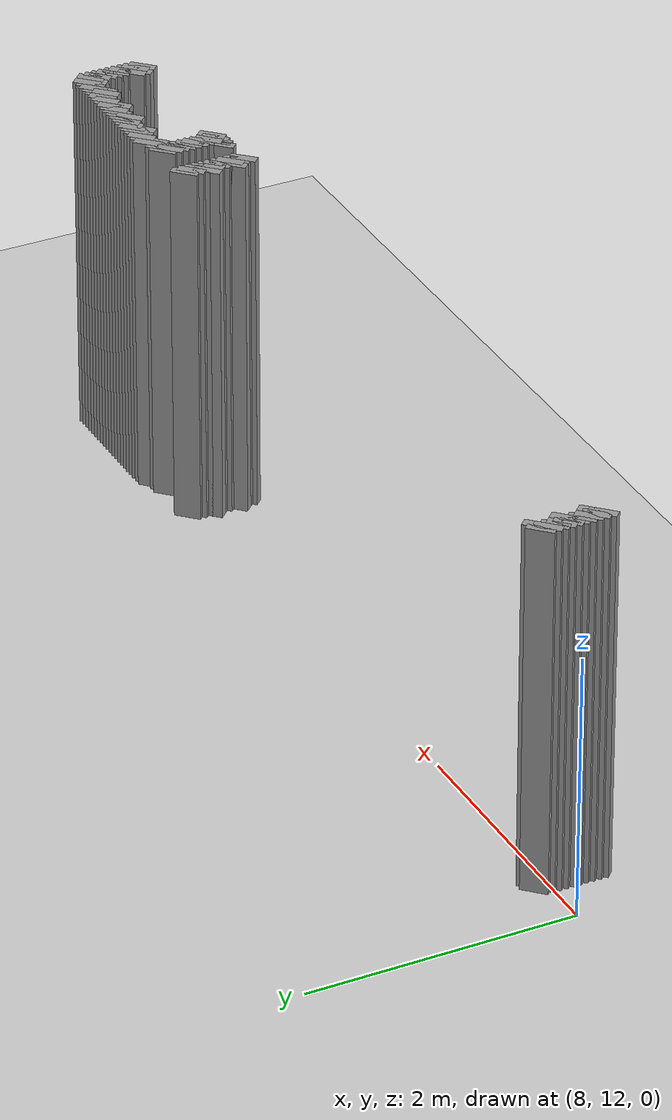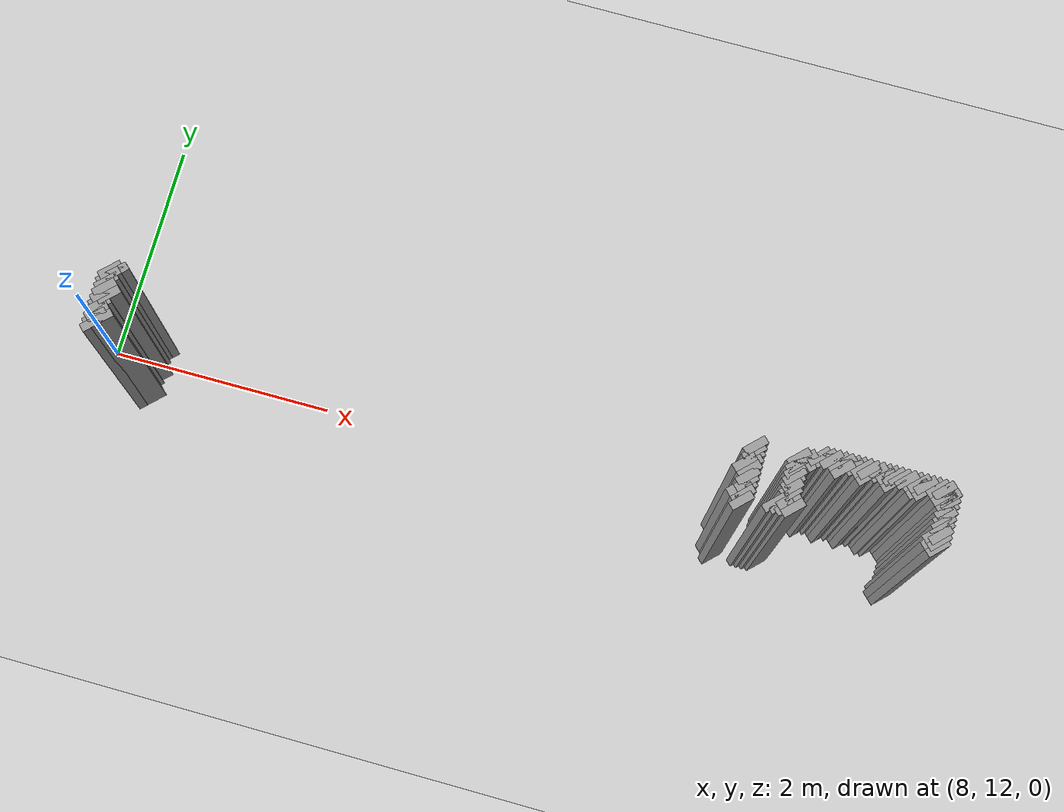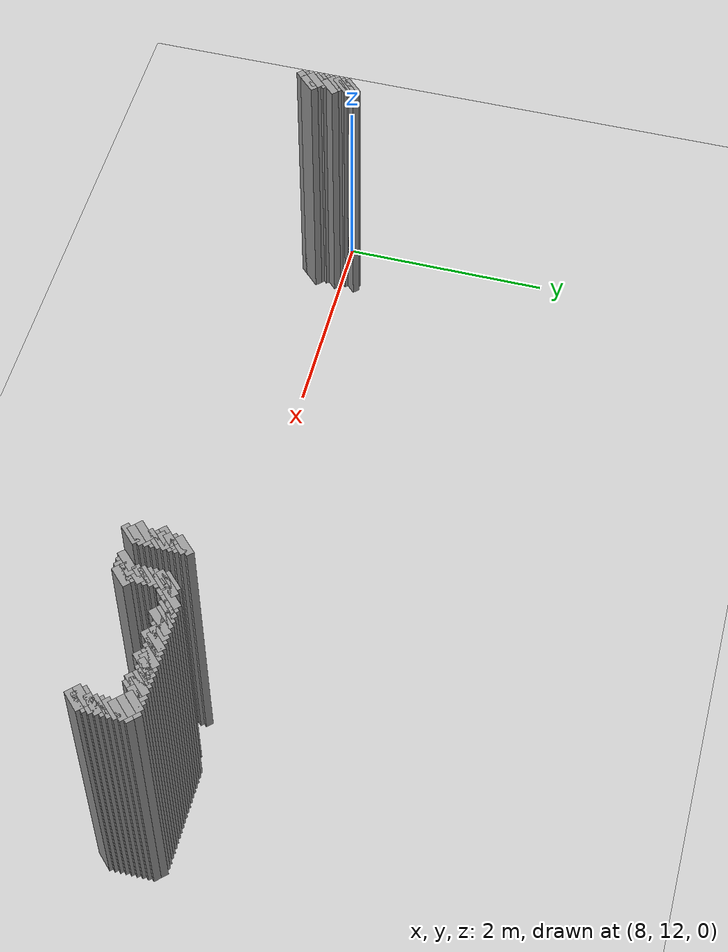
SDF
<sdf version="1.5">
 <world name="default">
  <include><uri>model://ground_plane</uri></include>
  <include><uri>model://sun</uri></include>
  <model name="grey_wall_857">
   <static>1</static>
   <link name="link">
    <pose>14.2 12.15  1.4 0 0 -0.785398163397</pose>
    <collision name="collision"><geometry><box><size>0.0707106781187 .2  2.8</size></box></geometry></collision>
    <visual name="visual">
     <cast_shadows>0</cast_shadows>
     <geometry><box><size>0.0707106781187 .2  2.8</size></box></geometry>
     <material>
      <script>
       <uri>model://grey_wall/materials/scripts</uri>
       <uri>model://grey_wall/materials/textures</uri>
       <name>vrc/grey_wall</name>
      </script>
     </material>
    </visual>
   </link>
  </model>
  <model name="grey_wall_858">
   <static>1</static>
   <link name="link">
    <pose>14.25 12.15  1.4 0 0 -0.785398163397</pose>
    <collision name="collision"><geometry><box><size>0.0707106781187 .2  2.8</size></box></geometry></collision>
    <visual name="visual">
     <cast_shadows>0</cast_shadows>
     <geometry><box><size>0.0707106781187 .2  2.8</size></box></geometry>
     <material>
      <script>
       <uri>model://grey_wall/materials/scripts</uri>
       <uri>model://grey_wall/materials/textures</uri>
       <name>vrc/grey_wall</name>
      </script>
     </material>
    </visual>
   </link>
  </model>
  <model name="grey_wall_859">
   <static>1</static>
   <link name="link">
    <pose>14.3 12.15  1.4 0 0 -0.785398163397</pose>
    <collision name="collision"><geometry><box><size>0.0707106781187 .2  2.8</size></box></geometry></collision>
    <visual name="visual">
     <cast_shadows>0</cast_shadows>
     <geometry><box><size>0.0707106781187 .2  2.8</size></box></geometry>
     <material>
      <script>
       <uri>model://grey_wall/materials/scripts</uri>
       <uri>model://grey_wall/materials/textures</uri>
       <name>vrc/grey_wall</name>
      </script>
     </material>
    </visual>
   </link>
  </model>
  <model name="grey_wall_860">
   <static>1</static>
   <link name="link">
    <pose>14.35 12.15  1.4 0 0 -0.785398163397</pose>
    <collision name="collision"><geometry><box><size>0.0707106781187 .2  2.8</size></box></geometry></collision>
    <visual name="visual">
     <cast_shadows>0</cast_shadows>
     <geometry><box><size>0.0707106781187 .2  2.8</size></box></geometry>
     <material>
      <script>
       <uri>model://grey_wall/materials/scripts</uri>
       <uri>model://grey_wall/materials/textures</uri>
       <name>vrc/grey_wall</name>
      </script>
     </material>
    </visual>
   </link>
  </model>
  <model name="grey_wall_861">
   <static>1</static>
   <link name="link">
    <pose>14.4 12.15  1.4 0 0 -0.785398163397</pose>
    <collision name="collision"><geometry><box><size>0.0707106781187 .2  2.8</size></box></geometry></collision>
    <visual name="visual">
     <cast_shadows>0</cast_shadows>
     <geometry><box><size>0.0707106781187 .2  2.8</size></box></geometry>
     <material>
      <script>
       <uri>model://grey_wall/materials/scripts</uri>
       <uri>model://grey_wall/materials/textures</uri>
       <name>vrc/grey_wall</name>
      </script>
     </material>
    </visual>
   </link>
  </model>
  <model name="grey_wall_862">
   <static>1</static>
   <link name="link">
    <pose>14.45 12.15  1.4 0 0 -0.785398163397</pose>
    <collision name="collision"><geometry><box><size>0.0707106781187 .2  2.8</size></box></geometry></collision>
    <visual name="visual">
     <cast_shadows>0</cast_shadows>
     <geometry><box><size>0.0707106781187 .2  2.8</size></box></geometry>
     <material>
      <script>
       <uri>model://grey_wall/materials/scripts</uri>
       <uri>model://grey_wall/materials/textures</uri>
       <name>vrc/grey_wall</name>
      </script>
     </material>
    </visual>
   </link>
  </model>
  <model name="grey_wall_863">
   <static>1</static>
   <link name="link">
    <pose>14.5 12.15  1.4 0 0 -0.785398163397</pose>
    <collision name="collision"><geometry><box><size>0.0707106781187 .2  2.8</size></box></geometry></collision>
    <visual name="visual">
     <cast_shadows>0</cast_shadows>
     <geometry><box><size>0.0707106781187 .2  2.8</size></box></geometry>
     <material>
      <script>
       <uri>model://grey_wall/materials/scripts</uri>
       <uri>model://grey_wall/materials/textures</uri>
       <name>vrc/grey_wall</name>
      </script>
     </material>
    </visual>
   </link>
  </model>
  <model name="grey_wall_864">
   <static>1</static>
   <link name="link">
    <pose>14.55 12.15  1.4 0 0 -0.785398163397</pose>
    <collision name="collision"><geometry><box><size>0.0707106781187 .2  2.8</size></box></geometry></collision>
    <visual name="visual">
     <cast_shadows>0</cast_shadows>
     <geometry><box><size>0.0707106781187 .2  2.8</size></box></geometry>
     <material>
      <script>
       <uri>model://grey_wall/materials/scripts</uri>
       <uri>model://grey_wall/materials/textures</uri>
       <name>vrc/grey_wall</name>
      </script>
     </material>
    </visual>
   </link>
  </model>
  <model name="grey_wall_865">
   <static>1</static>
   <link name="link">
    <pose>14.6 12.15  1.4 0 0 -0.785398163397</pose>
    <collision name="collision"><geometry><box><size>0.0707106781187 .2  2.8</size></box></geometry></collision>
    <visual name="visual">
     <cast_shadows>0</cast_shadows>
     <geometry><box><size>0.0707106781187 .2  2.8</size></box></geometry>
     <material>
      <script>
       <uri>model://grey_wall/materials/scripts</uri>
       <uri>model://grey_wall/materials/textures</uri>
       <name>vrc/grey_wall</name>
      </script>
     </material>
    </visual>
   </link>
  </model>
  <model name="grey_wall_866">
   <static>1</static>
   <link name="link">
    <pose>14.65 12.15  1.4 0 0 -0.785398163397</pose>
    <collision name="collision"><geometry><box><size>0.0707106781187 .2  2.8</size></box></geometry></collision>
    <visual name="visual">
     <cast_shadows>0</cast_shadows>
     <geometry><box><size>0.0707106781187 .2  2.8</size></box></geometry>
     <material>
      <script>
       <uri>model://grey_wall/materials/scripts</uri>
       <uri>model://grey_wall/materials/textures</uri>
       <name>vrc/grey_wall</name>
      </script>
     </material>
    </visual>
   </link>
  </model>
  <model name="grey_wall_867">
   <static>1</static>
   <link name="link">
    <pose>14.7 12.15  1.4 0 0 -0.785398163397</pose>
    <collision name="collision"><geometry><box><size>0.0707106781187 .2  2.8</size></box></geometry></collision>
    <visual name="visual">
     <cast_shadows>0</cast_shadows>
     <geometry><box><size>0.0707106781187 .2  2.8</size></box></geometry>
     <material>
      <script>
       <uri>model://grey_wall/materials/scripts</uri>
       <uri>model://grey_wall/materials/textures</uri>
       <name>vrc/grey_wall</name>
      </script>
     </material>
    </visual>
   </link>
  </model>
  <model name="grey_wall_868">
   <static>1</static>
   <link name="link">
    <pose>14.75 12.15  1.4 0 0 -0.785398163397</pose>
    <collision name="collision"><geometry><box><size>0.0707106781187 .2  2.8</size></box></geometry></collision>
    <visual name="visual">
     <cast_shadows>0</cast_shadows>
     <geometry><box><size>0.0707106781187 .2  2.8</size></box></geometry>
     <material>
      <script>
       <uri>model://grey_wall/materials/scripts</uri>
       <uri>model://grey_wall/materials/textures</uri>
       <name>vrc/grey_wall</name>
      </script>
     </material>
    </visual>
   </link>
  </model>
  <model name="grey_wall_869">
   <static>1</static>
   <link name="link">
    <pose>14.8 12.15  1.4 0 0 -0.785398163397</pose>
    <collision name="collision"><geometry><box><size>0.0707106781187 .2  2.8</size></box></geometry></collision>
    <visual name="visual">
     <cast_shadows>0</cast_shadows>
     <geometry><box><size>0.0707106781187 .2  2.8</size></box></geometry>
     <material>
      <script>
       <uri>model://grey_wall/materials/scripts</uri>
       <uri>model://grey_wall/materials/textures</uri>
       <name>vrc/grey_wall</name>
      </script>
     </material>
    </visual>
   </link>
  </model>
  <model name="grey_wall_870">
   <static>1</static>
   <link name="link">
    <pose>14.85 12.15  1.4 0 0 -0.785398163397</pose>
    <collision name="collision"><geometry><box><size>0.0707106781187 .2  2.8</size></box></geometry></collision>
    <visual name="visual">
     <cast_shadows>0</cast_shadows>
     <geometry><box><size>0.0707106781187 .2  2.8</size></box></geometry>
     <material>
      <script>
       <uri>model://grey_wall/materials/scripts</uri>
       <uri>model://grey_wall/materials/textures</uri>
       <name>vrc/grey_wall</name>
      </script>
     </material>
    </visual>
   </link>
  </model>
  <model name="grey_wall_871">
   <static>1</static>
   <link name="link">
    <pose>14.9 12.15  1.4 0 0 -0.785398163397</pose>
    <collision name="collision"><geometry><box><size>0.0707106781187 .2  2.8</size></box></geometry></collision>
    <visual name="visual">
     <cast_shadows>0</cast_shadows>
     <geometry><box><size>0.0707106781187 .2  2.8</size></box></geometry>
     <material>
      <script>
       <uri>model://grey_wall/materials/scripts</uri>
       <uri>model://grey_wall/materials/textures</uri>
       <name>vrc/grey_wall</name>
      </script>
     </material>
    </visual>
   </link>
  </model>
  <model name="grey_wall_872">
   <static>1</static>
   <link name="link">
    <pose>14.95 12.15  1.4 0 0 -0.785398163397</pose>
    <collision name="collision"><geometry><box><size>0.0707106781187 .2  2.8</size></box></geometry></collision>
    <visual name="visual">
     <cast_shadows>0</cast_shadows>
     <geometry><box><size>0.0707106781187 .2  2.8</size></box></geometry>
     <material>
      <script>
       <uri>model://grey_wall/materials/scripts</uri>
       <uri>model://grey_wall/materials/textures</uri>
       <name>vrc/grey_wall</name>
      </script>
     </material>
    </visual>
   </link>
  </model>
  <model name="grey_wall_873">
   <static>1</static>
   <link name="link">
    <pose>15.0 12.15  1.4 0 0 -0.785398163397</pose>
    <collision name="collision"><geometry><box><size>0.0707106781187 .2  2.8</size></box></geometry></collision>
    <visual name="visual">
     <cast_shadows>0</cast_shadows>
     <geometry><box><size>0.0707106781187 .2  2.8</size></box></geometry>
     <material>
      <script>
       <uri>model://grey_wall/materials/scripts</uri>
       <uri>model://grey_wall/materials/textures</uri>
       <name>vrc/grey_wall</name>
      </script>
     </material>
    </visual>
   </link>
  </model>
  <model name="grey_wall_874">
   <static>1</static>
   <link name="link">
    <pose>15.05 12.15  1.4 0 0 -0.785398163397</pose>
    <collision name="collision"><geometry><box><size>0.0707106781187 .2  2.8</size></box></geometry></collision>
    <visual name="visual">
     <cast_shadows>0</cast_shadows>
     <geometry><box><size>0.0707106781187 .2  2.8</size></box></geometry>
     <material>
      <script>
       <uri>model://grey_wall/materials/scripts</uri>
       <uri>model://grey_wall/materials/textures</uri>
       <name>vrc/grey_wall</name>
      </script>
     </material>
    </visual>
   </link>
  </model>
  <model name="grey_wall_875">
   <static>1</static>
   <link name="link">
    <pose>15.1 12.15  1.4 0 0 -0.785398163397</pose>
    <collision name="collision"><geometry><box><size>0.0707106781187 .2  2.8</size></box></geometry></collision>
    <visual name="visual">
     <cast_shadows>0</cast_shadows>
     <geometry><box><size>0.0707106781187 .2  2.8</size></box></geometry>
     <material>
      <script>
       <uri>model://grey_wall/materials/scripts</uri>
       <uri>model://grey_wall/materials/textures</uri>
       <name>vrc/grey_wall</name>
      </script>
     </material>
    </visual>
   </link>
  </model>
  <model name="grey_wall_876">
   <static>1</static>
   <link name="link">
    <pose>15.15 12.15  1.4 0 0 -0.785398163397</pose>
    <collision name="collision"><geometry><box><size>0.0707106781187 .2  2.8</size></box></geometry></collision>
    <visual name="visual">
     <cast_shadows>0</cast_shadows>
     <geometry><box><size>0.0707106781187 .2  2.8</size></box></geometry>
     <material>
      <script>
       <uri>model://grey_wall/materials/scripts</uri>
       <uri>model://grey_wall/materials/textures</uri>
       <name>vrc/grey_wall</name>
      </script>
     </material>
    </visual>
   </link>
  </model>
  <model name="grey_wall_877">
   <static>1</static>
   <link name="link">
    <pose>15.2 12.15  1.4 0 0 -0.785398163397</pose>
    <collision name="collision"><geometry><box><size>0.0707106781187 .2  2.8</size></box></geometry></collision>
    <visual name="visual">
     <cast_shadows>0</cast_shadows>
     <geometry><box><size>0.0707106781187 .2  2.8</size></box></geometry>
     <material>
      <script>
       <uri>model://grey_wall/materials/scripts</uri>
       <uri>model://grey_wall/materials/textures</uri>
       <name>vrc/grey_wall</name>
      </script>
     </material>
    </visual>
   </link>
  </model>
  <model name="grey_wall_878">
   <static>1</static>
   <link name="link">
    <pose>8.4 12.1  1.4 0 0 -0.785398163397</pose>
    <collision name="collision"><geometry><box><size>0.0707106781187 .2  2.8</size></box></geometry></collision>
    <visual name="visual">
     <cast_shadows>0</cast_shadows>
     <geometry><box><size>0.0707106781187 .2  2.8</size></box></geometry>
     <material>
      <script>
       <uri>model://grey_wall/materials/scripts</uri>
       <uri>model://grey_wall/materials/textures</uri>
       <name>vrc/grey_wall</name>
      </script>
     </material>
    </visual>
   </link>
  </model>
  <model name="grey_wall_879">
   <static>1</static>
   <link name="link">
    <pose>8.45 12.1  1.4 0 0 -0.785398163397</pose>
    <collision name="collision"><geometry><box><size>0.0707106781187 .2  2.8</size></box></geometry></collision>
    <visual name="visual">
     <cast_shadows>0</cast_shadows>
     <geometry><box><size>0.0707106781187 .2  2.8</size></box></geometry>
     <material>
      <script>
       <uri>model://grey_wall/materials/scripts</uri>
       <uri>model://grey_wall/materials/textures</uri>
       <name>vrc/grey_wall</name>
      </script>
     </material>
    </visual>
   </link>
  </model>
  <model name="grey_wall_880">
   <static>1</static>
   <link name="link">
    <pose>13.7 12.1  1.4 0 0 -0.785398163397</pose>
    <collision name="collision"><geometry><box><size>0.0707106781187 .2  2.8</size></box></geometry></collision>
    <visual name="visual">
     <cast_shadows>0</cast_shadows>
     <geometry><box><size>0.0707106781187 .2  2.8</size></box></geometry>
     <material>
      <script>
       <uri>model://grey_wall/materials/scripts</uri>
       <uri>model://grey_wall/materials/textures</uri>
       <name>vrc/grey_wall</name>
      </script>
     </material>
    </visual>
   </link>
  </model>
  <model name="grey_wall_881">
   <static>1</static>
   <link name="link">
    <pose>14.05 12.1  1.4 0 0 -0.785398163397</pose>
    <collision name="collision"><geometry><box><size>0.0707106781187 .2  2.8</size></box></geometry></collision>
    <visual name="visual">
     <cast_shadows>0</cast_shadows>
     <geometry><box><size>0.0707106781187 .2  2.8</size></box></geometry>
     <material>
      <script>
       <uri>model://grey_wall/materials/scripts</uri>
       <uri>model://grey_wall/materials/textures</uri>
       <name>vrc/grey_wall</name>
      </script>
     </material>
    </visual>
   </link>
  </model>
  <model name="grey_wall_882">
   <static>1</static>
   <link name="link">
    <pose>14.1 12.1  1.4 0 0 -0.785398163397</pose>
    <collision name="collision"><geometry><box><size>0.0707106781187 .2  2.8</size></box></geometry></collision>
    <visual name="visual">
     <cast_shadows>0</cast_shadows>
     <geometry><box><size>0.0707106781187 .2  2.8</size></box></geometry>
     <material>
      <script>
       <uri>model://grey_wall/materials/scripts</uri>
       <uri>model://grey_wall/materials/textures</uri>
       <name>vrc/grey_wall</name>
      </script>
     </material>
    </visual>
   </link>
  </model>
  <model name="grey_wall_883">
   <static>1</static>
   <link name="link">
    <pose>14.2 12.1  1.4 0 0 -0.785398163397</pose>
    <collision name="collision"><geometry><box><size>0.0707106781187 .2  2.8</size></box></geometry></collision>
    <visual name="visual">
     <cast_shadows>0</cast_shadows>
     <geometry><box><size>0.0707106781187 .2  2.8</size></box></geometry>
     <material>
      <script>
       <uri>model://grey_wall/materials/scripts</uri>
       <uri>model://grey_wall/materials/textures</uri>
       <name>vrc/grey_wall</name>
      </script>
     </material>
    </visual>
   </link>
  </model>
  <model name="grey_wall_884">
   <static>1</static>
   <link name="link">
    <pose>14.4 12.1  1.4 0 0 -0.785398163397</pose>
    <collision name="collision"><geometry><box><size>0.0707106781187 .2  2.8</size></box></geometry></collision>
    <visual name="visual">
     <cast_shadows>0</cast_shadows>
     <geometry><box><size>0.0707106781187 .2  2.8</size></box></geometry>
     <material>
      <script>
       <uri>model://grey_wall/materials/scripts</uri>
       <uri>model://grey_wall/materials/textures</uri>
       <name>vrc/grey_wall</name>
      </script>
     </material>
    </visual>
   </link>
  </model>
  <model name="grey_wall_885">
   <static>1</static>
   <link name="link">
    <pose>14.6 12.1  1.4 0 0 -0.785398163397</pose>
    <collision name="collision"><geometry><box><size>0.0707106781187 .2  2.8</size></box></geometry></collision>
    <visual name="visual">
     <cast_shadows>0</cast_shadows>
     <geometry><box><size>0.0707106781187 .2  2.8</size></box></geometry>
     <material>
      <script>
       <uri>model://grey_wall/materials/scripts</uri>
       <uri>model://grey_wall/materials/textures</uri>
       <name>vrc/grey_wall</name>
      </script>
     </material>
    </visual>
   </link>
  </model>
  <model name="grey_wall_886">
   <static>1</static>
   <link name="link">
    <pose>14.8 12.1  1.4 0 0 -0.785398163397</pose>
    <collision name="collision"><geometry><box><size>0.0707106781187 .2  2.8</size></box></geometry></collision>
    <visual name="visual">
     <cast_shadows>0</cast_shadows>
     <geometry><box><size>0.0707106781187 .2  2.8</size></box></geometry>
     <material>
      <script>
       <uri>model://grey_wall/materials/scripts</uri>
       <uri>model://grey_wall/materials/textures</uri>
       <name>vrc/grey_wall</name>
      </script>
     </material>
    </visual>
   </link>
  </model>
  <model name="grey_wall_887">
   <static>1</static>
   <link name="link">
    <pose>15.0 12.1  1.4 0 0 -0.785398163397</pose>
    <collision name="collision"><geometry><box><size>0.0707106781187 .2  2.8</size></box></geometry></collision>
    <visual name="visual">
     <cast_shadows>0</cast_shadows>
     <geometry><box><size>0.0707106781187 .2  2.8</size></box></geometry>
     <material>
      <script>
       <uri>model://grey_wall/materials/scripts</uri>
       <uri>model://grey_wall/materials/textures</uri>
       <name>vrc/grey_wall</name>
      </script>
     </material>
    </visual>
   </link>
  </model>
  <model name="grey_wall_888">
   <static>1</static>
   <link name="link">
    <pose>15.05 12.1  1.4 0 0 -0.785398163397</pose>
    <collision name="collision"><geometry><box><size>0.0707106781187 .2  2.8</size></box></geometry></collision>
    <visual name="visual">
     <cast_shadows>0</cast_shadows>
     <geometry><box><size>0.0707106781187 .2  2.8</size></box></geometry>
     <material>
      <script>
       <uri>model://grey_wall/materials/scripts</uri>
       <uri>model://grey_wall/materials/textures</uri>
       <name>vrc/grey_wall</name>
      </script>
     </material>
    </visual>
   </link>
  </model>
  <model name="grey_wall_889">
   <static>1</static>
   <link name="link">
    <pose>15.2 12.1  1.4 0 0 -0.785398163397</pose>
    <collision name="collision"><geometry><box><size>0.0707106781187 .2  2.8</size></box></geometry></collision>
    <visual name="visual">
     <cast_shadows>0</cast_shadows>
     <geometry><box><size>0.0707106781187 .2  2.8</size></box></geometry>
     <material>
      <script>
       <uri>model://grey_wall/materials/scripts</uri>
       <uri>model://grey_wall/materials/textures</uri>
       <name>vrc/grey_wall</name>
      </script>
     </material>
    </visual>
   </link>
  </model>
  <model name="grey_wall_890">
   <static>1</static>
   <link name="link">
    <pose>15.25 12.1  1.4 0 0 -0.785398163397</pose>
    <collision name="collision"><geometry><box><size>0.0707106781187 .2  2.8</size></box></geometry></collision>
    <visual name="visual">
     <cast_shadows>0</cast_shadows>
     <geometry><box><size>0.0707106781187 .2  2.8</size></box></geometry>
     <material>
      <script>
       <uri>model://grey_wall/materials/scripts</uri>
       <uri>model://grey_wall/materials/textures</uri>
       <name>vrc/grey_wall</name>
      </script>
     </material>
    </visual>
   </link>
  </model>
  <model name="grey_wall_891">
   <static>1</static>
   <link name="link">
    <pose>8.4 12.05  1.4 0 0 -0.785398163397</pose>
    <collision name="collision"><geometry><box><size>0.0707106781187 .2  2.8</size></box></geometry></collision>
    <visual name="visual">
     <cast_shadows>0</cast_shadows>
     <geometry><box><size>0.0707106781187 .2  2.8</size></box></geometry>
     <material>
      <script>
       <uri>model://grey_wall/materials/scripts</uri>
       <uri>model://grey_wall/materials/textures</uri>
       <name>vrc/grey_wall</name>
      </script>
     </material>
    </visual>
   </link>
  </model>
  <model name="grey_wall_892">
   <static>1</static>
   <link name="link">
    <pose>13.7 12.05  1.4 0 0 -0.785398163397</pose>
    <collision name="collision"><geometry><box><size>0.0707106781187 .2  2.8</size></box></geometry></collision>
    <visual name="visual">
     <cast_shadows>0</cast_shadows>
     <geometry><box><size>0.0707106781187 .2  2.8</size></box></geometry>
     <material>
      <script>
       <uri>model://grey_wall/materials/scripts</uri>
       <uri>model://grey_wall/materials/textures</uri>
       <name>vrc/grey_wall</name>
      </script>
     </material>
    </visual>
   </link>
  </model>
  <model name="grey_wall_893">
   <static>1</static>
   <link name="link">
    <pose>14.05 12.05  1.4 0 0 -0.785398163397</pose>
    <collision name="collision"><geometry><box><size>0.0707106781187 .2  2.8</size></box></geometry></collision>
    <visual name="visual">
     <cast_shadows>0</cast_shadows>
     <geometry><box><size>0.0707106781187 .2  2.8</size></box></geometry>
     <material>
      <script>
       <uri>model://grey_wall/materials/scripts</uri>
       <uri>model://grey_wall/materials/textures</uri>
       <name>vrc/grey_wall</name>
      </script>
     </material>
    </visual>
   </link>
  </model>
  <model name="grey_wall_894">
   <static>1</static>
   <link name="link">
    <pose>15.25 12.05  1.4 0 0 -0.785398163397</pose>
    <collision name="collision"><geometry><box><size>0.0707106781187 .2  2.8</size></box></geometry></collision>
    <visual name="visual">
     <cast_shadows>0</cast_shadows>
     <geometry><box><size>0.0707106781187 .2  2.8</size></box></geometry>
     <material>
      <script>
       <uri>model://grey_wall/materials/scripts</uri>
       <uri>model://grey_wall/materials/textures</uri>
       <name>vrc/grey_wall</name>
      </script>
     </material>
    </visual>
   </link>
  </model>
  <model name="grey_wall_895">
   <static>1</static>
   <link name="link">
    <pose>8.4 12.0  1.4 0 0 -0.785398163397</pose>
    <collision name="collision"><geometry><box><size>0.0707106781187 .2  2.8</size></box></geometry></collision>
    <visual name="visual">
     <cast_shadows>0</cast_shadows>
     <geometry><box><size>0.0707106781187 .2  2.8</size></box></geometry>
     <material>
      <script>
       <uri>model://grey_wall/materials/scripts</uri>
       <uri>model://grey_wall/materials/textures</uri>
       <name>vrc/grey_wall</name>
      </script>
     </material>
    </visual>
   </link>
  </model>
  <model name="grey_wall_896">
   <static>1</static>
   <link name="link">
    <pose>13.7 12.0  1.4 0 0 -0.785398163397</pose>
    <collision name="collision"><geometry><box><size>0.0707106781187 .2  2.8</size></box></geometry></collision>
    <visual name="visual">
     <cast_shadows>0</cast_shadows>
     <geometry><box><size>0.0707106781187 .2  2.8</size></box></geometry>
     <material>
      <script>
       <uri>model://grey_wall/materials/scripts</uri>
       <uri>model://grey_wall/materials/textures</uri>
       <name>vrc/grey_wall</name>
      </script>
     </material>
    </visual>
   </link>
  </model>
  <model name="grey_wall_897">
   <static>1</static>
   <link name="link">
    <pose>14.05 12.0  1.4 0 0 -0.785398163397</pose>
    <collision name="collision"><geometry><box><size>0.0707106781187 .2  2.8</size></box></geometry></collision>
    <visual name="visual">
     <cast_shadows>0</cast_shadows>
     <geometry><box><size>0.0707106781187 .2  2.8</size></box></geometry>
     <material>
      <script>
       <uri>model://grey_wall/materials/scripts</uri>
       <uri>model://grey_wall/materials/textures</uri>
       <name>vrc/grey_wall</name>
      </script>
     </material>
    </visual>
   </link>
  </model>
  <model name="grey_wall_898">
   <static>1</static>
   <link name="link">
    <pose>15.25 12.0  1.4 0 0 -0.785398163397</pose>
    <collision name="collision"><geometry><box><size>0.0707106781187 .2  2.8</size></box></geometry></collision>
    <visual name="visual">
     <cast_shadows>0</cast_shadows>
     <geometry><box><size>0.0707106781187 .2  2.8</size></box></geometry>
     <material>
      <script>
       <uri>model://grey_wall/materials/scripts</uri>
       <uri>model://grey_wall/materials/textures</uri>
       <name>vrc/grey_wall</name>
      </script>
     </material>
    </visual>
   </link>
  </model>
  <model name="grey_wall_899">
   <static>1</static>
   <link name="link">
    <pose>8.4 11.95  1.4 0 0 -0.785398163397</pose>
    <collision name="collision"><geometry><box><size>0.0707106781187 .2  2.8</size></box></geometry></collision>
    <visual name="visual">
     <cast_shadows>0</cast_shadows>
     <geometry><box><size>0.0707106781187 .2  2.8</size></box></geometry>
     <material>
      <script>
       <uri>model://grey_wall/materials/scripts</uri>
       <uri>model://grey_wall/materials/textures</uri>
       <name>vrc/grey_wall</name>
      </script>
     </material>
    </visual>
   </link>
  </model>
  <model name="grey_wall_900">
   <static>1</static>
   <link name="link">
    <pose>13.65 11.95  1.4 0 0 -0.785398163397</pose>
    <collision name="collision"><geometry><box><size>0.0707106781187 .2  2.8</size></box></geometry></collision>
    <visual name="visual">
     <cast_shadows>0</cast_shadows>
     <geometry><box><size>0.0707106781187 .2  2.8</size></box></geometry>
     <material>
      <script>
       <uri>model://grey_wall/materials/scripts</uri>
       <uri>model://grey_wall/materials/textures</uri>
       <name>vrc/grey_wall</name>
      </script>
     </material>
    </visual>
   </link>
  </model>
  <model name="grey_wall_901">
   <static>1</static>
   <link name="link">
    <pose>13.7 11.95  1.4 0 0 -0.785398163397</pose>
    <collision name="collision"><geometry><box><size>0.0707106781187 .2  2.8</size></box></geometry></collision>
    <visual name="visual">
     <cast_shadows>0</cast_shadows>
     <geometry><box><size>0.0707106781187 .2  2.8</size></box></geometry>
     <material>
      <script>
       <uri>model://grey_wall/materials/scripts</uri>
       <uri>model://grey_wall/materials/textures</uri>
       <name>vrc/grey_wall</name>
      </script>
     </material>
    </visual>
   </link>
  </model>
  <model name="grey_wall_902">
   <static>1</static>
   <link name="link">
    <pose>14.05 11.95  1.4 0 0 -0.785398163397</pose>
    <collision name="collision"><geometry><box><size>0.0707106781187 .2  2.8</size></box></geometry></collision>
    <visual name="visual">
     <cast_shadows>0</cast_shadows>
     <geometry><box><size>0.0707106781187 .2  2.8</size></box></geometry>
     <material>
      <script>
       <uri>model://grey_wall/materials/scripts</uri>
       <uri>model://grey_wall/materials/textures</uri>
       <name>vrc/grey_wall</name>
      </script>
     </material>
    </visual>
   </link>
  </model>
  <model name="grey_wall_903">
   <static>1</static>
   <link name="link">
    <pose>15.25 11.95  1.4 0 0 -0.785398163397</pose>
    <collision name="collision"><geometry><box><size>0.0707106781187 .2  2.8</size></box></geometry></collision>
    <visual name="visual">
     <cast_shadows>0</cast_shadows>
     <geometry><box><size>0.0707106781187 .2  2.8</size></box></geometry>
     <material>
      <script>
       <uri>model://grey_wall/materials/scripts</uri>
       <uri>model://grey_wall/materials/textures</uri>
       <name>vrc/grey_wall</name>
      </script>
     </material>
    </visual>
   </link>
  </model>
  <model name="grey_wall_904">
   <static>1</static>
   <link name="link">
    <pose>8.4 11.9  1.4 0 0 -0.785398163397</pose>
    <collision name="collision"><geometry><box><size>0.0707106781187 .2  2.8</size></box></geometry></collision>
    <visual name="visual">
     <cast_shadows>0</cast_shadows>
     <geometry><box><size>0.0707106781187 .2  2.8</size></box></geometry>
     <material>
      <script>
       <uri>model://grey_wall/materials/scripts</uri>
       <uri>model://grey_wall/materials/textures</uri>
       <name>vrc/grey_wall</name>
      </script>
     </material>
    </visual>
   </link>
  </model>
  <model name="grey_wall_905">
   <static>1</static>
   <link name="link">
    <pose>8.45 11.9  1.4 0 0 -0.785398163397</pose>
    <collision name="collision"><geometry><box><size>0.0707106781187 .2  2.8</size></box></geometry></collision>
    <visual name="visual">
     <cast_shadows>0</cast_shadows>
     <geometry><box><size>0.0707106781187 .2  2.8</size></box></geometry>
     <material>
      <script>
       <uri>model://grey_wall/materials/scripts</uri>
       <uri>model://grey_wall/materials/textures</uri>
       <name>vrc/grey_wall</name>
      </script>
     </material>
    </visual>
   </link>
  </model>
  <model name="grey_wall_906">
   <static>1</static>
   <link name="link">
    <pose>13.7 11.9  1.4 0 0 -0.785398163397</pose>
    <collision name="collision"><geometry><box><size>0.0707106781187 .2  2.8</size></box></geometry></collision>
    <visual name="visual">
     <cast_shadows>0</cast_shadows>
     <geometry><box><size>0.0707106781187 .2  2.8</size></box></geometry>
     <material>
      <script>
       <uri>model://grey_wall/materials/scripts</uri>
       <uri>model://grey_wall/materials/textures</uri>
       <name>vrc/grey_wall</name>
      </script>
     </material>
    </visual>
   </link>
  </model>
  <model name="grey_wall_907">
   <static>1</static>
   <link name="link">
    <pose>14.05 11.9  1.4 0 0 -0.785398163397</pose>
    <collision name="collision"><geometry><box><size>0.0707106781187 .2  2.8</size></box></geometry></collision>
    <visual name="visual">
     <cast_shadows>0</cast_shadows>
     <geometry><box><size>0.0707106781187 .2  2.8</size></box></geometry>
     <material>
      <script>
       <uri>model://grey_wall/materials/scripts</uri>
       <uri>model://grey_wall/materials/textures</uri>
       <name>vrc/grey_wall</name>
      </script>
     </material>
    </visual>
   </link>
  </model>
  <model name="grey_wall_908">
   <static>1</static>
   <link name="link">
    <pose>15.25 11.9  1.4 0 0 -0.785398163397</pose>
    <collision name="collision"><geometry><box><size>0.0707106781187 .2  2.8</size></box></geometry></collision>
    <visual name="visual">
     <cast_shadows>0</cast_shadows>
     <geometry><box><size>0.0707106781187 .2  2.8</size></box></geometry>
     <material>
      <script>
       <uri>model://grey_wall/materials/scripts</uri>
       <uri>model://grey_wall/materials/textures</uri>
       <name>vrc/grey_wall</name>
      </script>
     </material>
    </visual>
   </link>
  </model>
  <model name="grey_wall_909">
   <static>1</static>
   <link name="link">
    <pose>8.4 11.85  1.4 0 0 -0.785398163397</pose>
    <collision name="collision"><geometry><box><size>0.0707106781187 .2  2.8</size></box></geometry></collision>
    <visual name="visual">
     <cast_shadows>0</cast_shadows>
     <geometry><box><size>0.0707106781187 .2  2.8</size></box></geometry>
     <material>
      <script>
       <uri>model://grey_wall/materials/scripts</uri>
       <uri>model://grey_wall/materials/textures</uri>
       <name>vrc/grey_wall</name>
      </script>
     </material>
    </visual>
   </link>
  </model>
  <model name="grey_wall_910">
   <static>1</static>
   <link name="link">
    <pose>13.7 11.85  1.4 0 0 -0.785398163397</pose>
    <collision name="collision"><geometry><box><size>0.0707106781187 .2  2.8</size></box></geometry></collision>
    <visual name="visual">
     <cast_shadows>0</cast_shadows>
     <geometry><box><size>0.0707106781187 .2  2.8</size></box></geometry>
     <material>
      <script>
       <uri>model://grey_wall/materials/scripts</uri>
       <uri>model://grey_wall/materials/textures</uri>
       <name>vrc/grey_wall</name>
      </script>
     </material>
    </visual>
   </link>
  </model>
  <model name="grey_wall_911">
   <static>1</static>
   <link name="link">
    <pose>14.05 11.85  1.4 0 0 -0.785398163397</pose>
    <collision name="collision"><geometry><box><size>0.0707106781187 .2  2.8</size></box></geometry></collision>
    <visual name="visual">
     <cast_shadows>0</cast_shadows>
     <geometry><box><size>0.0707106781187 .2  2.8</size></box></geometry>
     <material>
      <script>
       <uri>model://grey_wall/materials/scripts</uri>
       <uri>model://grey_wall/materials/textures</uri>
       <name>vrc/grey_wall</name>
      </script>
     </material>
    </visual>
   </link>
  </model>
  <model name="grey_wall_912">
   <static>1</static>
   <link name="link">
    <pose>15.25 11.85  1.4 0 0 -0.785398163397</pose>
    <collision name="collision"><geometry><box><size>0.0707106781187 .2  2.8</size></box></geometry></collision>
    <visual name="visual">
     <cast_shadows>0</cast_shadows>
     <geometry><box><size>0.0707106781187 .2  2.8</size></box></geometry>
     <material>
      <script>
       <uri>model://grey_wall/materials/scripts</uri>
       <uri>model://grey_wall/materials/textures</uri>
       <name>vrc/grey_wall</name>
      </script>
     </material>
    </visual>
   </link>
  </model>
  <model name="grey_wall_913">
   <static>1</static>
   <link name="link">
    <pose>8.4 11.8  1.4 0 0 -0.785398163397</pose>
    <collision name="collision"><geometry><box><size>0.0707106781187 .2  2.8</size></box></geometry></collision>
    <visual name="visual">
     <cast_shadows>0</cast_shadows>
     <geometry><box><size>0.0707106781187 .2  2.8</size></box></geometry>
     <material>
      <script>
       <uri>model://grey_wall/materials/scripts</uri>
       <uri>model://grey_wall/materials/textures</uri>
       <name>vrc/grey_wall</name>
      </script>
     </material>
    </visual>
   </link>
  </model>
  <model name="grey_wall_914">
   <static>1</static>
   <link name="link">
    <pose>13.7 11.8  1.4 0 0 -0.785398163397</pose>
    <collision name="collision"><geometry><box><size>0.0707106781187 .2  2.8</size></box></geometry></collision>
    <visual name="visual">
     <cast_shadows>0</cast_shadows>
     <geometry><box><size>0.0707106781187 .2  2.8</size></box></geometry>
     <material>
      <script>
       <uri>model://grey_wall/materials/scripts</uri>
       <uri>model://grey_wall/materials/textures</uri>
       <name>vrc/grey_wall</name>
      </script>
     </material>
    </visual>
   </link>
  </model>
  <model name="grey_wall_915">
   <static>1</static>
   <link name="link">
    <pose>14.05 11.8  1.4 0 0 -0.785398163397</pose>
    <collision name="collision"><geometry><box><size>0.0707106781187 .2  2.8</size></box></geometry></collision>
    <visual name="visual">
     <cast_shadows>0</cast_shadows>
     <geometry><box><size>0.0707106781187 .2  2.8</size></box></geometry>
     <material>
      <script>
       <uri>model://grey_wall/materials/scripts</uri>
       <uri>model://grey_wall/materials/textures</uri>
       <name>vrc/grey_wall</name>
      </script>
     </material>
    </visual>
   </link>
  </model>
  <model name="grey_wall_916">
   <static>1</static>
   <link name="link">
    <pose>15.2 11.8  1.4 0 0 -0.785398163397</pose>
    <collision name="collision"><geometry><box><size>0.0707106781187 .2  2.8</size></box></geometry></collision>
    <visual name="visual">
     <cast_shadows>0</cast_shadows>
     <geometry><box><size>0.0707106781187 .2  2.8</size></box></geometry>
     <material>
      <script>
       <uri>model://grey_wall/materials/scripts</uri>
       <uri>model://grey_wall/materials/textures</uri>
       <name>vrc/grey_wall</name>
      </script>
     </material>
    </visual>
   </link>
  </model>
  <model name="grey_wall_917">
   <static>1</static>
   <link name="link">
    <pose>15.25 11.8  1.4 0 0 -0.785398163397</pose>
    <collision name="collision"><geometry><box><size>0.0707106781187 .2  2.8</size></box></geometry></collision>
    <visual name="visual">
     <cast_shadows>0</cast_shadows>
     <geometry><box><size>0.0707106781187 .2  2.8</size></box></geometry>
     <material>
      <script>
       <uri>model://grey_wall/materials/scripts</uri>
       <uri>model://grey_wall/materials/textures</uri>
       <name>vrc/grey_wall</name>
      </script>
     </material>
    </visual>
   </link>
  </model>
  <model name="grey_wall_918">
   <static>1</static>
   <link name="link">
    <pose>8.4 11.75  1.4 0 0 -0.785398163397</pose>
    <collision name="collision"><geometry><box><size>0.0707106781187 .2  2.8</size></box></geometry></collision>
    <visual name="visual">
     <cast_shadows>0</cast_shadows>
     <geometry><box><size>0.0707106781187 .2  2.8</size></box></geometry>
     <material>
      <script>
       <uri>model://grey_wall/materials/scripts</uri>
       <uri>model://grey_wall/materials/textures</uri>
       <name>vrc/grey_wall</name>
      </script>
     </material>
    </visual>
   </link>
  </model>
  <model name="grey_wall_919">
   <static>1</static>
   <link name="link">
    <pose>13.65 11.75  1.4 0 0 -0.785398163397</pose>
    <collision name="collision"><geometry><box><size>0.0707106781187 .2  2.8</size></box></geometry></collision>
    <visual name="visual">
     <cast_shadows>0</cast_shadows>
     <geometry><box><size>0.0707106781187 .2  2.8</size></box></geometry>
     <material>
      <script>
       <uri>model://grey_wall/materials/scripts</uri>
       <uri>model://grey_wall/materials/textures</uri>
       <name>vrc/grey_wall</name>
      </script>
     </material>
    </visual>
   </link>
  </model>
  <model name="grey_wall_920">
   <static>1</static>
   <link name="link">
    <pose>13.7 11.75  1.4 0 0 -0.785398163397</pose>
    <collision name="collision"><geometry><box><size>0.0707106781187 .2  2.8</size></box></geometry></collision>
    <visual name="visual">
     <cast_shadows>0</cast_shadows>
     <geometry><box><size>0.0707106781187 .2  2.8</size></box></geometry>
     <material>
      <script>
       <uri>model://grey_wall/materials/scripts</uri>
       <uri>model://grey_wall/materials/textures</uri>
       <name>vrc/grey_wall</name>
      </script>
     </material>
    </visual>
   </link>
  </model>
  <model name="grey_wall_921">
   <static>1</static>
   <link name="link">
    <pose>14.05 11.75  1.4 0 0 -0.785398163397</pose>
    <collision name="collision"><geometry><box><size>0.0707106781187 .2  2.8</size></box></geometry></collision>
    <visual name="visual">
     <cast_shadows>0</cast_shadows>
     <geometry><box><size>0.0707106781187 .2  2.8</size></box></geometry>
     <material>
      <script>
       <uri>model://grey_wall/materials/scripts</uri>
       <uri>model://grey_wall/materials/textures</uri>
       <name>vrc/grey_wall</name>
      </script>
     </material>
    </visual>
   </link>
  </model>
  <model name="grey_wall_922">
   <static>1</static>
   <link name="link">
    <pose>15.2 11.75  1.4 0 0 -0.785398163397</pose>
    <collision name="collision"><geometry><box><size>0.0707106781187 .2  2.8</size></box></geometry></collision>
    <visual name="visual">
     <cast_shadows>0</cast_shadows>
     <geometry><box><size>0.0707106781187 .2  2.8</size></box></geometry>
     <material>
      <script>
       <uri>model://grey_wall/materials/scripts</uri>
       <uri>model://grey_wall/materials/textures</uri>
       <name>vrc/grey_wall</name>
      </script>
     </material>
    </visual>
   </link>
  </model>
  <model name="grey_wall_923">
   <static>1</static>
   <link name="link">
    <pose>15.25 11.75  1.4 0 0 -0.785398163397</pose>
    <collision name="collision"><geometry><box><size>0.0707106781187 .2  2.8</size></box></geometry></collision>
    <visual name="visual">
     <cast_shadows>0</cast_shadows>
     <geometry><box><size>0.0707106781187 .2  2.8</size></box></geometry>
     <material>
      <script>
       <uri>model://grey_wall/materials/scripts</uri>
       <uri>model://grey_wall/materials/textures</uri>
       <name>vrc/grey_wall</name>
      </script>
     </material>
    </visual>
   </link>
  </model>
  <model name="grey_wall_924">
   <static>1</static>
   <link name="link">
    <pose>8.4 11.7  1.4 0 0 -0.785398163397</pose>
    <collision name="collision"><geometry><box><size>0.0707106781187 .2  2.8</size></box></geometry></collision>
    <visual name="visual">
     <cast_shadows>0</cast_shadows>
     <geometry><box><size>0.0707106781187 .2  2.8</size></box></geometry>
     <material>
      <script>
       <uri>model://grey_wall/materials/scripts</uri>
       <uri>model://grey_wall/materials/textures</uri>
       <name>vrc/grey_wall</name>
      </script>
     </material>
    </visual>
   </link>
  </model>
  <model name="grey_wall_925">
   <static>1</static>
   <link name="link">
    <pose>8.45 11.7  1.4 0 0 -0.785398163397</pose>
    <collision name="collision"><geometry><box><size>0.0707106781187 .2  2.8</size></box></geometry></collision>
    <visual name="visual">
     <cast_shadows>0</cast_shadows>
     <geometry><box><size>0.0707106781187 .2  2.8</size></box></geometry>
     <material>
      <script>
       <uri>model://grey_wall/materials/scripts</uri>
       <uri>model://grey_wall/materials/textures</uri>
       <name>vrc/grey_wall</name>
      </script>
     </material>
    </visual>
   </link>
  </model>
  <model name="grey_wall_926">
   <static>1</static>
   <link name="link">
    <pose>13.7 11.7  1.4 0 0 -0.785398163397</pose>
    <collision name="collision"><geometry><box><size>0.0707106781187 .2  2.8</size></box></geometry></collision>
    <visual name="visual">
     <cast_shadows>0</cast_shadows>
     <geometry><box><size>0.0707106781187 .2  2.8</size></box></geometry>
     <material>
      <script>
       <uri>model://grey_wall/materials/scripts</uri>
       <uri>model://grey_wall/materials/textures</uri>
       <name>vrc/grey_wall</name>
      </script>
     </material>
    </visual>
   </link>
  </model>
  <model name="grey_wall_927">
   <static>1</static>
   <link name="link">
    <pose>13.95 11.7  1.4 0 0 -0.785398163397</pose>
    <collision name="collision"><geometry><box><size>0.0707106781187 .2  2.8</size></box></geometry></collision>
    <visual name="visual">
     <cast_shadows>0</cast_shadows>
     <geometry><box><size>0.0707106781187 .2  2.8</size></box></geometry>
     <material>
      <script>
       <uri>model://grey_wall/materials/scripts</uri>
       <uri>model://grey_wall/materials/textures</uri>
       <name>vrc/grey_wall</name>
      </script>
     </material>
    </visual>
   </link>
  </model>
  <model name="grey_wall_928">
   <static>1</static>
   <link name="link">
    <pose>14.0 11.7  1.4 0 0 -0.785398163397</pose>
    <collision name="collision"><geometry><box><size>0.0707106781187 .2  2.8</size></box></geometry></collision>
    <visual name="visual">
     <cast_shadows>0</cast_shadows>
     <geometry><box><size>0.0707106781187 .2  2.8</size></box></geometry>
     <material>
      <script>
       <uri>model://grey_wall/materials/scripts</uri>
       <uri>model://grey_wall/materials/textures</uri>
       <name>vrc/grey_wall</name>
      </script>
     </material>
    </visual>
   </link>
  </model>
  <model name="grey_wall_929">
   <static>1</static>
   <link name="link">
    <pose>14.05 11.7  1.4 0 0 -0.785398163397</pose>
    <collision name="collision"><geometry><box><size>0.0707106781187 .2  2.8</size></box></geometry></collision>
    <visual name="visual">
     <cast_shadows>0</cast_shadows>
     <geometry><box><size>0.0707106781187 .2  2.8</size></box></geometry>
     <material>
      <script>
       <uri>model://grey_wall/materials/scripts</uri>
       <uri>model://grey_wall/materials/textures</uri>
       <name>vrc/grey_wall</name>
      </script>
     </material>
    </visual>
   </link>
  </model>
  <model name="grey_wall_930">
   <static>1</static>
   <link name="link">
    <pose>14.1 11.7  1.4 0 0 -0.785398163397</pose>
    <collision name="collision"><geometry><box><size>0.0707106781187 .2  2.8</size></box></geometry></collision>
    <visual name="visual">
     <cast_shadows>0</cast_shadows>
     <geometry><box><size>0.0707106781187 .2  2.8</size></box></geometry>
     <material>
      <script>
       <uri>model://grey_wall/materials/scripts</uri>
       <uri>model://grey_wall/materials/textures</uri>
       <name>vrc/grey_wall</name>
      </script>
     </material>
    </visual>
   </link>
  </model>
  <model name="grey_wall_931">
   <static>1</static>
   <link name="link">
    <pose>15.25 11.7  1.4 0 0 -0.785398163397</pose>
    <collision name="collision"><geometry><box><size>0.0707106781187 .2  2.8</size></box></geometry></collision>
    <visual name="visual">
     <cast_shadows>0</cast_shadows>
     <geometry><box><size>0.0707106781187 .2  2.8</size></box></geometry>
     <material>
      <script>
       <uri>model://grey_wall/materials/scripts</uri>
       <uri>model://grey_wall/materials/textures</uri>
       <name>vrc/grey_wall</name>
      </script>
     </material>
    </visual>
   </link>
  </model>
  <model name="grey_wall_932">
   <static>1</static>
   <link name="link">
    <pose>8.4 11.65  1.4 0 0 -0.785398163397</pose>
    <collision name="collision"><geometry><box><size>0.0707106781187 .2  2.8</size></box></geometry></collision>
    <visual name="visual">
     <cast_shadows>0</cast_shadows>
     <geometry><box><size>0.0707106781187 .2  2.8</size></box></geometry>
     <material>
      <script>
       <uri>model://grey_wall/materials/scripts</uri>
       <uri>model://grey_wall/materials/textures</uri>
       <name>vrc/grey_wall</name>
      </script>
     </material>
    </visual>
   </link>
  </model>
  <model name="grey_wall_933">
   <static>1</static>
   <link name="link">
    <pose>13.7 11.65  1.4 0 0 -0.785398163397</pose>
    <collision name="collision"><geometry><box><size>0.0707106781187 .2  2.8</size></box></geometry></collision>
    <visual name="visual">
     <cast_shadows>0</cast_shadows>
     <geometry><box><size>0.0707106781187 .2  2.8</size></box></geometry>
     <material>
      <script>
       <uri>model://grey_wall/materials/scripts</uri>
       <uri>model://grey_wall/materials/textures</uri>
       <name>vrc/grey_wall</name>
      </script>
     </material>
    </visual>
   </link>
  </model>
 </world>
</sdf>
